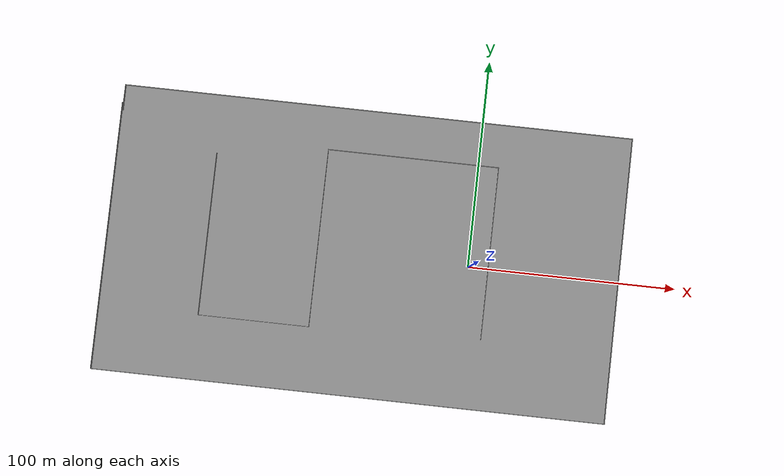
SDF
<?xml version='1.0'?>
<sdf version='1.7'>
  <model name='test2'>
    <pose>-51.1774 1.14406 0 0 -0 0</pose>
    <link name='Floor_0'>
      <collision name='Floor_0_Collision'>
        <geometry>
          <box>
            <size>247 137.75 0.1</size>
          </box>
        </geometry>
        <pose>0 0 0.05 0 -0 0</pose>
      </collision>
      <visual name='Floor_0_Visual'>
        <pose>0 0 0.05 0 -0 0</pose>
        <geometry>
          <box>
            <size>247 137.75 0.1</size>
          </box>
        </geometry>
        <material>
          <script>
            <uri>file://media/materials/scripts/gazebo.material</uri>
            <name>Gazebo/Grey</name>
          </script>
          <ambient>1 1 1 1</ambient>
        </material>
        <meta>
          <layer>1</layer>
        </meta>
      </visual>
      <pose>8e-06 3e-06 2.5 0 -0 0</pose>
    </link>
    <link name='Wall_0'>
      <collision name='Wall_0_Collision'>
        <geometry>
          <box>
            <size>129 0.15 2.5</size>
          </box>
        </geometry>
        <pose>0 0 1.25 0 -0 0</pose>
      </collision>
      <visual name='Wall_0_Visual'>
        <pose>0 0 1.25 0 -0 0</pose>
        <geometry>
          <box>
            <size>129 0.15 2.5</size>
          </box>
        </geometry>
        <material>
          <script>
            <uri>file://media/materials/scripts/gazebo.material</uri>
            <name>Gazebo/Grey</name>
          </script>
          <ambient>1 1 1 1</ambient>
        </material>
        <meta>
          <layer>0</layer>
        </meta>
      </visual>
      <pose>-123.425 -4.375 0 0 -0 -1.5708</pose>
    </link>
    <link name='Wall_1'>
      <collision name='Wall_1_Collision'>
        <geometry>
          <box>
            <size>247 0.15 2.5</size>
          </box>
        </geometry>
        <pose>0 0 1.25 0 -0 0</pose>
      </collision>
      <visual name='Wall_1_Visual'>
        <pose>0 0 1.25 0 -0 0</pose>
        <geometry>
          <box>
            <size>247 0.15 2.5</size>
          </box>
        </geometry>
        <material>
          <script>
            <uri>file://media/materials/scripts/gazebo.material</uri>
            <name>Gazebo/Grey</name>
          </script>
          <ambient>1 1 1 1</ambient>
        </material>
        <meta>
          <layer>0</layer>
        </meta>
      </visual>
      <pose>8e-06 -68.8 0 0 -0 0</pose>
    </link>
    <link name='Wall_10'>
      <collision name='Wall_10_Collision'>
        <geometry>
          <box>
            <size>12.5 0.15 2.5</size>
          </box>
        </geometry>
        <pose>0 0 1.25 0 -0 0</pose>
      </collision>
      <visual name='Wall_10_Visual'>
        <pose>0 0 1.25 0 -0 0</pose>
        <geometry>
          <box>
            <size>12.5 0.15 2.5</size>
          </box>
        </geometry>
        <material>
          <script>
            <uri>file://media/materials/scripts/gazebo.material</uri>
            <name>Gazebo/Grey</name>
          </script>
          <ambient>1 1 1 1</ambient>
        </material>
        <meta>
          <layer>1</layer>
        </meta>
      </visual>
      <pose>-122.925 62.625 2.5 0 -0 -1.5708</pose>
    </link>
    <link name='Wall_11'>
      <collision name='Wall_11_Collision'>
        <geometry>
          <box>
            <size>78.5 0.15 2.5</size>
          </box>
        </geometry>
        <pose>0 0 1.25 0 -0 0</pose>
      </collision>
      <visual name='Wall_11_Visual'>
        <pose>0 0 1.25 0 -0 0</pose>
        <geometry>
          <box>
            <size>78.5 0.15 2.5</size>
          </box>
        </geometry>
        <material>
          <script>
            <uri>file://media/materials/scripts/gazebo.material</uri>
            <name>Gazebo/Grey</name>
          </script>
          <ambient>1 1 1 1</ambient>
        </material>
        <meta>
          <layer>1</layer>
        </meta>
      </visual>
      <pose>-75.3347 1.40988 2.5 0 -0 -1.5708</pose>
    </link>
    <link name='Wall_12'>
      <collision name='Wall_12_Collision'>
        <geometry>
          <box>
            <size>53.5 0.15 2.5</size>
          </box>
        </geometry>
        <pose>0 0 1.25 0 -0 0</pose>
      </collision>
      <visual name='Wall_12_Visual'>
        <pose>0 0 1.25 0 -0 0</pose>
        <geometry>
          <box>
            <size>53.5 0.15 2.5</size>
          </box>
        </geometry>
        <material>
          <script>
            <uri>file://media/materials/scripts/gazebo.material</uri>
            <name>Gazebo/Grey</name>
          </script>
          <ambient>1 1 1 1</ambient>
        </material>
        <meta>
          <layer>1</layer>
        </meta>
      </visual>
      <pose>-48.6597 -37.7651 2.5 0 -0 0</pose>
    </link>
    <link name='Wall_13'>
      <collision name='Wall_13_Collision'>
        <geometry>
          <box>
            <size>86 0.15 2.5</size>
          </box>
        </geometry>
        <pose>0 0 1.25 0 -0 0</pose>
      </collision>
      <visual name='Wall_13_Visual'>
        <pose>0 0 1.25 0 -0 0</pose>
        <geometry>
          <box>
            <size>86 0.15 2.5</size>
          </box>
        </geometry>
        <material>
          <script>
            <uri>file://media/materials/scripts/gazebo.material</uri>
            <name>Gazebo/Grey</name>
          </script>
          <ambient>1 1 1 1</ambient>
        </material>
        <meta>
          <layer>1</layer>
        </meta>
      </visual>
      <pose>-21.9847 5.15988 2.5 0 -0 1.5708</pose>
    </link>
    <link name='Wall_14'>
      <collision name='Wall_14_Collision'>
        <geometry>
          <box>
            <size>82.75 0.15 2.5</size>
          </box>
        </geometry>
        <pose>0 0 1.25 0 -0 0</pose>
      </collision>
      <visual name='Wall_14_Visual'>
        <pose>0 0 1.25 0 -0 0</pose>
        <geometry>
          <box>
            <size>82.75 0.15 2.5</size>
          </box>
        </geometry>
        <material>
          <script>
            <uri>file://media/materials/scripts/gazebo.material</uri>
            <name>Gazebo/Grey</name>
          </script>
          <ambient>1 1 1 1</ambient>
        </material>
        <meta>
          <layer>1</layer>
        </meta>
      </visual>
      <pose>19.3153 48.0849 2.5 0 -0 0</pose>
    </link>
    <link name='Wall_15'>
      <collision name='Wall_15_Collision'>
        <geometry>
          <box>
            <size>83.5 0.15 2.5</size>
          </box>
        </geometry>
        <pose>0 0 1.25 0 -0 0</pose>
      </collision>
      <visual name='Wall_15_Visual'>
        <pose>0 0 1.25 0 -0 0</pose>
        <geometry>
          <box>
            <size>83.5 0.15 2.5</size>
          </box>
        </geometry>
        <material>
          <script>
            <uri>file://media/materials/scripts/gazebo.material</uri>
            <name>Gazebo/Grey</name>
          </script>
          <ambient>1 1 1 1</ambient>
        </material>
        <meta>
          <layer>1</layer>
        </meta>
      </visual>
      <pose>60.6153 6.40988 2.5 0 -0 -1.5708</pose>
    </link>
    <link name='Wall_2'>
      <collision name='Wall_2_Collision'>
        <geometry>
          <box>
            <size>137.75 0.15 2.5</size>
          </box>
        </geometry>
        <pose>0 0 1.25 0 -0 0</pose>
      </collision>
      <visual name='Wall_2_Visual'>
        <pose>0 0 1.25 0 -0 0</pose>
        <geometry>
          <box>
            <size>137.75 0.15 2.5</size>
          </box>
        </geometry>
        <material>
          <script>
            <uri>file://media/materials/scripts/gazebo.material</uri>
            <name>Gazebo/Grey</name>
          </script>
          <ambient>1 1 1 1</ambient>
        </material>
        <meta>
          <layer>0</layer>
        </meta>
      </visual>
      <pose>123.425 3e-06 0 0 -0 1.5708</pose>
    </link>
    <link name='Wall_3'>
      <collision name='Wall_3_Collision'>
        <geometry>
          <box>
            <size>246.5 0.15 2.5</size>
          </box>
        </geometry>
        <pose>0 0 1.25 0 -0 0</pose>
      </collision>
      <visual name='Wall_3_Visual'>
        <pose>0 0 1.25 0 -0 0</pose>
        <geometry>
          <box>
            <size>246.5 0.15 2.5</size>
          </box>
        </geometry>
        <material>
          <script>
            <uri>file://media/materials/scripts/gazebo.material</uri>
            <name>Gazebo/Grey</name>
          </script>
          <ambient>1 1 1 1</ambient>
        </material>
        <meta>
          <layer>0</layer>
        </meta>
      </visual>
      <pose>0.250008 68.8 0 0 -0 3.14159</pose>
    </link>
    <link name='Wall_4'>
      <collision name='Wall_4_Collision'>
        <geometry>
          <box>
            <size>12.5 0.15 2.5</size>
          </box>
        </geometry>
        <pose>0 0 1.25 0 -0 0</pose>
      </collision>
      <visual name='Wall_4_Visual'>
        <pose>0 0 1.25 0 -0 0</pose>
        <geometry>
          <box>
            <size>12.5 0.15 2.5</size>
          </box>
        </geometry>
        <material>
          <script>
            <uri>file://media/materials/scripts/gazebo.material</uri>
            <name>Gazebo/Grey</name>
          </script>
          <ambient>1 1 1 1</ambient>
        </material>
        <meta>
          <layer>0</layer>
        </meta>
      </visual>
      <pose>-122.925 62.625 0 0 -0 -1.5708</pose>
    </link>
    <link name='Wall_6'>
      <collision name='Wall_6_Collision'>
        <geometry>
          <box>
            <size>129 0.15 2.5</size>
          </box>
        </geometry>
        <pose>0 0 1.25 0 -0 0</pose>
      </collision>
      <visual name='Wall_6_Visual'>
        <pose>0 0 1.25 0 -0 0</pose>
        <geometry>
          <box>
            <size>129 0.15 2.5</size>
          </box>
        </geometry>
        <material>
          <script>
            <uri>file://media/materials/scripts/gazebo.material</uri>
            <name>Gazebo/Grey</name>
          </script>
          <ambient>1 1 1 1</ambient>
        </material>
        <meta>
          <layer>1</layer>
        </meta>
      </visual>
      <pose>-123.425 -4.375 2.5 0 -0 -1.5708</pose>
    </link>
    <link name='Wall_7'>
      <collision name='Wall_7_Collision'>
        <geometry>
          <box>
            <size>247 0.15 2.5</size>
          </box>
        </geometry>
        <pose>0 0 1.25 0 -0 0</pose>
      </collision>
      <visual name='Wall_7_Visual'>
        <pose>0 0 1.25 0 -0 0</pose>
        <geometry>
          <box>
            <size>247 0.15 2.5</size>
          </box>
        </geometry>
        <material>
          <script>
            <uri>file://media/materials/scripts/gazebo.material</uri>
            <name>Gazebo/Grey</name>
          </script>
          <ambient>1 1 1 1</ambient>
        </material>
        <meta>
          <layer>1</layer>
        </meta>
      </visual>
      <pose>8e-06 -68.8 2.5 0 -0 0</pose>
    </link>
    <link name='Wall_8'>
      <collision name='Wall_8_Collision'>
        <geometry>
          <box>
            <size>137.75 0.15 2.5</size>
          </box>
        </geometry>
        <pose>0 0 1.25 0 -0 0</pose>
      </collision>
      <visual name='Wall_8_Visual'>
        <pose>0 0 1.25 0 -0 0</pose>
        <geometry>
          <box>
            <size>137.75 0.15 2.5</size>
          </box>
        </geometry>
        <material>
          <script>
            <uri>file://media/materials/scripts/gazebo.material</uri>
            <name>Gazebo/Grey</name>
          </script>
          <ambient>1 1 1 1</ambient>
        </material>
        <meta>
          <layer>1</layer>
        </meta>
      </visual>
      <pose>123.425 3e-06 2.5 0 -0 1.5708</pose>
    </link>
    <link name='Wall_9'>
      <collision name='Wall_9_Collision'>
        <geometry>
          <box>
            <size>246.5 0.15 2.5</size>
          </box>
        </geometry>
        <pose>0 0 1.25 0 -0 0</pose>
      </collision>
      <visual name='Wall_9_Visual'>
        <pose>0 0 1.25 0 -0 0</pose>
        <geometry>
          <box>
            <size>246.5 0.15 2.5</size>
          </box>
        </geometry>
        <material>
          <script>
            <uri>file://media/materials/scripts/gazebo.material</uri>
            <name>Gazebo/Grey</name>
          </script>
          <ambient>1 1 1 1</ambient>
        </material>
        <meta>
          <layer>1</layer>
        </meta>
      </visual>
      <pose>0.250008 68.8 2.5 0 -0 3.14159</pose>
    </link>
    <static>1</static>
  </model>
</sdf>
